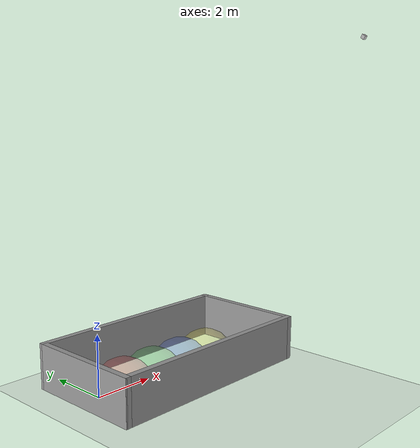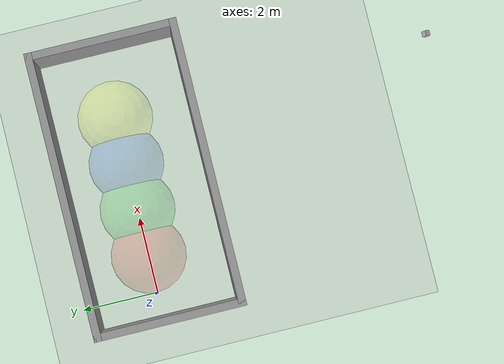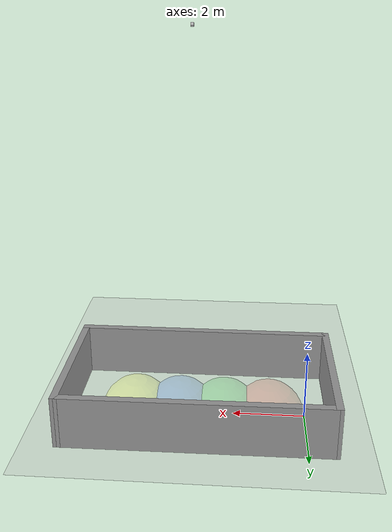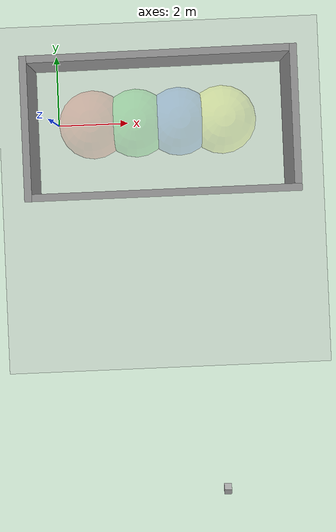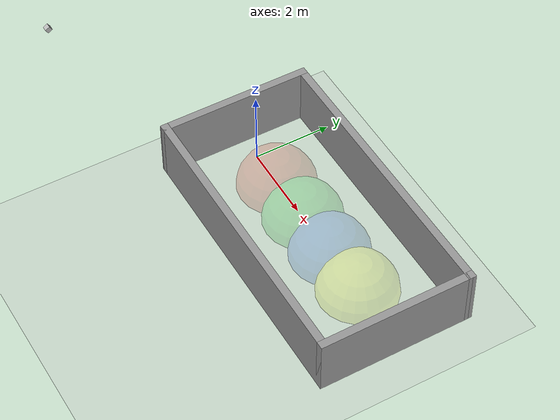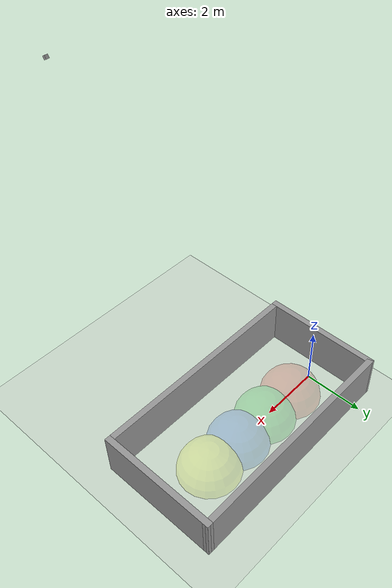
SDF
<sdf version="1.4">
 <world name="default">
  <include><uri>model://ground_plane</uri></include>
  <include><uri>model://sun</uri></include>
  <include><uri>plumeWorldEnv</uri><pose>2.3 0.5 0 0 0 0</pose></include>
  <include><uri>colorPlumes</uri></include>
  <include><pose>3.68422 -6.23958 10.2859 0 1.0193 1.54621</pose><uri>static_cam</uri></include>
 </world>
</sdf>

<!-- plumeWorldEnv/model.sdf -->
<sdf version='1.5'>
    <model name='plumeWorld'>
      <link name='Wall_6'>
        <collision name='Wall_6_Collision'>
          <geometry>
            <box>
              <size>3.95002 0.2 1.5</size>
            </box>
          </geometry>
          <pose>0 0 0.75 0 -0 0</pose>
          <max_contacts>10</max_contacts>
          <surface>
            <contact>
              <ode/>
            </contact>
            <bounce/>
            <friction>
              <ode/>
            </friction>
          </surface>
        </collision>
        <visual name='Wall_6_Visual'>
          <pose>0 0 0.75 0 -0 0</pose>
          <geometry>
            <box>
              <size>3.95002 0.2 1.5</size>
            </box>
          </geometry>
          <material>
            <script>
              <uri>file://media/materials/scripts/gazebo.material</uri>
              <name>Gazebo/Grey</name>
            </script>
          </material>
        </visual>
        <velocity_decay>
          <linear>0</linear>
          <angular>0</angular>
        </velocity_decay>
        <pose>-3.01034 -0.685 0 0 0 -1.57098</pose>
        <self_collide>0</self_collide>
        <kinematic>0</kinematic>
        <gravity>1</gravity>
      </link>
      <link name='Wall_7'>
        <collision name='Wall_7_Collision'>
          <geometry>
            <box>
              <size>7.52055 0.2 1.5</size>
            </box>
          </geometry>
          <pose>0 0 0.75 0 -0 0</pose>
          <max_contacts>10</max_contacts>
          <surface>
            <contact>
              <ode/>
            </contact>
            <bounce/>
            <friction>
              <ode/>
            </friction>
          </surface>
        </collision>
        <visual name='Wall_7_Visual'>
          <pose>0 0 0.75 0 -0 0</pose>
          <geometry>
            <box>
              <size>7.52055 0.2 1.5</size>
            </box>
          </geometry>
          <material>
            <script>
              <uri>file://media/materials/scripts/gazebo.material</uri>
              <name>Gazebo/Grey</name>
            </script>
          </material>
        </visual>
        <velocity_decay>
          <linear>0</linear>
          <angular>0</angular>
        </velocity_decay>
        <pose>0.649659 -2.56 0 0 -0 0</pose>
        <self_collide>0</self_collide>
        <kinematic>0</kinematic>
        <gravity>1</gravity>
      </link>
      <link name='Wall_8'>
        <collision name='Wall_8_Collision'>
          <geometry>
            <box>
              <size>3.99 0.2 1.5</size>
            </box>
          </geometry>
          <pose>0 0 0.75 0 -0 0</pose>
          <max_contacts>10</max_contacts>
          <surface>
            <contact>
              <ode/>
            </contact>
            <bounce/>
            <friction>
              <ode/>
            </friction>
          </surface>
        </collision>
        <visual name='Wall_8_Visual'>
          <pose>0 0 0.75 0 -0 0</pose>
          <geometry>
            <box>
              <size>3.99 0.2 1.5</size>
            </box>
          </geometry>
          <material>
            <script>
              <uri>file://media/materials/scripts/gazebo.material</uri>
              <name>Gazebo/Grey</name>
            </script>
          </material>
        </visual>
        <velocity_decay>
          <linear>0</linear>
          <angular>0</angular>
        </velocity_decay>
        <pose>4.31 -0.665 0 0 -0 1.5708</pose>
        <self_collide>0</self_collide>
        <kinematic>0</kinematic>
        <gravity>1</gravity>
      </link>
      <link name='Wall_9'>
        <collision name='Wall_9_Collision'>
          <geometry>
            <box>
              <size>7.52011 0.2 1.5</size>
            </box>
          </geometry>
          <pose>0 0 0.75 0 -0 0</pose>
          <max_contacts>10</max_contacts>
          <surface>
            <contact>
              <ode/>
            </contact>
            <bounce/>
            <friction>
              <ode/>
            </friction>
          </surface>
        </collision>
        <visual name='Wall_9_Visual'>
          <pose>0 0 0.75 0 -0 0</pose>
          <geometry>
            <box>
              <size>7.52011 0.2 1.5</size>
            </box>
          </geometry>
          <material>
            <script>
              <uri>file://media/materials/scripts/gazebo.material</uri>
              <name>Gazebo/Grey</name>
            </script>
          </material>
        </visual>
        <velocity_decay>
          <linear>0</linear>
          <angular>0</angular>
        </velocity_decay>
        <pose>0.65 1.21 0 0 0 -3.13613</pose>
        <self_collide>0</self_collide>
        <kinematic>0</kinematic>
        <gravity>1</gravity>
      </link>
      <static>1</static>
    </model>
</sdf>

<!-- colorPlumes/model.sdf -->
<sdf version='1.5'>
    <model name='colorPlumes'>
        <static>true</static>
        <link name='red_plume'>
            <pose>1 0 0 0 -0 0</pose>
            <visual name='visual'>
                <transparency>0.75</transparency>
                <geometry>
                    <sphere>
                        <radius>1.0</radius>
                    </sphere>
                </geometry>
                <material>
                    <script>
                        <uri>file://media/materials/scripts/gazebo.material</uri>
                        <name>Gazebo/Red</name>
                    </script>
                </material>
            </visual>
        </link>
        <link name='green_plume'>
            <pose>2.25 0 0 0 -0 0</pose>
            <visual name='visual'>
                <transparency>0.75</transparency>
                <geometry>
                    <sphere>
                        <radius>1.0</radius>
                    </sphere>
                </geometry>
                <material>
                    <script>
                        <uri>file://media/materials/scripts/gazebo.material</uri>
                        <name>Gazebo/Green</name>
                    </script>
                </material>
            </visual>
        </link>
        <link name='blue_plume'>
            <pose>3.5 0 0 0 -0 0</pose>
            <visual name='visual'>
                <transparency>0.75</transparency>
                <geometry>
                    <sphere>
                        <radius>1.0</radius>
                    </sphere>
                </geometry>
                <material>
                    <script>
                        <uri>file://media/materials/scripts/gazebo.material</uri>
                        <name>Gazebo/Blue</name>
                    </script>
                </material>
            </visual>
        </link>
        <link name='yellow_plume'>
            <pose>4.75 0 0 0 -0 0</pose>
            <visual name='visual'>
                <transparency>0.75</transparency>
                <geometry>
                    <sphere>
                        <radius>1.0</radius>
                    </sphere>
                </geometry>
                <material>
                    <script>
                        <uri>file://media/materials/scripts/gazebo.material</uri>
                        <name>Gazebo/Yellow</name>
                    </script>
                </material>
            </visual>
        </link>

        <!-- inner spheres -->

        <link name='red_gradient'>
            <pose>1 0 0 0 -0 0</pose>
            <visual name='visual'>
                <transparency>0.75</transparency>
                <geometry>
                    <sphere>
                        <radius>0.9</radius>
                    </sphere>
                </geometry>
                <material>
                    <script>
                        <uri>file://media/materials/scripts/gazebo.material</uri>
                        <name>Gazebo/Red</name>
                    </script>
                </material>
            </visual>
        </link>
        <link name='green_gradient'>
            <pose>2.25 0 0 0 -0 0</pose>
            <visual name='visual'>
                <transparency>0.75</transparency>
                <geometry>
                    <sphere>
                        <radius>0.9</radius>
                    </sphere>
                </geometry>
                <material>
                    <script>
                        <uri>file://media/materials/scripts/gazebo.material</uri>
                        <name>Gazebo/Green</name>
                    </script>
                </material>
            </visual>
        </link>
        <link name='blue_gradient'>
            <pose>3.5 0 0 0 -0 0</pose>
            <visual name='visual'>
                <transparency>0.75</transparency>
                <geometry>
                    <sphere>
                        <radius>0.9</radius>
                    </sphere>
                </geometry>
                <material>
                    <script>
                        <uri>file://media/materials/scripts/gazebo.material</uri>
                        <name>Gazebo/Blue</name>
                    </script>
                </material>
            </visual>
        </link>
        <link name='yellow_gradient'>
            <pose>4.75 0 0 0 -0 0</pose>
            <visual name='visual'>
                <transparency>0.75</transparency>
                <geometry>
                    <sphere>
                        <radius>0.9</radius>
                    </sphere>
                </geometry>
                <material>
                    <script>
                        <uri>file://media/materials/scripts/gazebo.material</uri>
                        <name>Gazebo/Yellow</name>
                    </script>
                </material>
            </visual>
        </link>
        <!-- odorant sources -->

        <link name='red_source'>
            <pose>1 0 0 0 -0 0</pose>
            <visual name='visual'>
                <transparency>0.85</transparency>
                <geometry>
                    <sphere>
                        <radius>0.75</radius>
                    </sphere>
                </geometry>
                <material>
                    <script>
                        <uri>file://media/materials/scripts/gazebo.material</uri>
                        <name>Gazebo/Red</name>
                    </script>
                </material>
            </visual>
        </link>
        <link name='green_source'>
            <pose>2.25 0 0 0 -0 0</pose>
            <visual name='visual'>
                <transparency>0.85</transparency>
                <geometry>
                    <sphere>
                        <radius>0.75</radius>
                    </sphere>
                </geometry>
                <material>
                    <script>
                        <uri>file://media/materials/scripts/gazebo.material</uri>
                        <name>Gazebo/Green</name>
                    </script>
                </material>
            </visual>
        </link>
        <link name='blue_source'>
            <pose>3.5 0 0 0 -0 0</pose>
            <visual name='visual'>
                <transparency>0.85</transparency>
                <geometry>
                    <sphere>
                        <radius>0.75</radius>
                    </sphere>
                </geometry>
                <material>
                    <script>
                        <uri>file://media/materials/scripts/gazebo.material</uri>
                        <name>Gazebo/Blue</name>
                    </script>
                </material>
            </visual>
        </link>
        <link name='yellow_source'>
            <pose>4.75 0 0 0 -0 0</pose>
            <visual name='visual'>
                <transparency>0.85</transparency>
                <geometry>
                    <sphere>
                        <radius>0.75</radius>
                    </sphere>
                </geometry>
                <material>
                    <script>
                        <uri>file://media/materials/scripts/gazebo.material</uri>
                        <name>Gazebo/Yellow</name>
                    </script>
                </material>
            </visual>
        </link>
    </model>
</sdf>

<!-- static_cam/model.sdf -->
<sdf version="1.5">
  <model name="camera">
<static>true</static>
    <link name="link">
      <pose>0.05 0.05 0.05 0 0 0</pose>
      <inertial>
        <mass>0.1</mass>
      </inertial>
      <collision name="collision">
        <geometry>
          <box>
            <size>0.1 0.1 0.1</size>
          </box>
        </geometry>
      </collision>
      <visual name="visual">
        <geometry>
          <box>
            <size>0.1 0.1 0.1</size>
          </box>
        </geometry>
      </visual>
      <sensor name="camera" type="camera">
        <camera>
          <horizontal_fov>1.047</horizontal_fov>
          <image>
            <width>640</width>
            <height>480</height>
          </image>
          <clip>
            <near>0.1</near>
            <far>100</far>
          </clip>
		<save enabled="true">
		  <path>tmp</path>
		</save>
        </camera>
        <always_on>1</always_on>
        <update_rate>30</update_rate>
        <visualize>true</visualize>
      </sensor>
    </link>
  </model>
</sdf>
